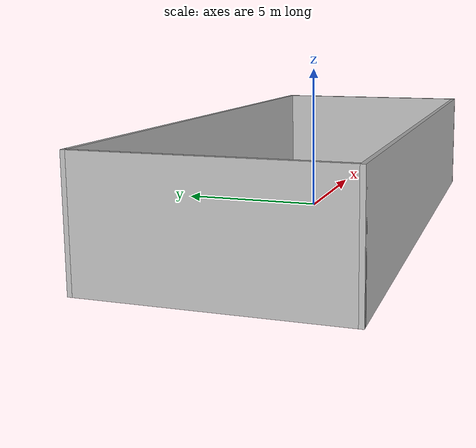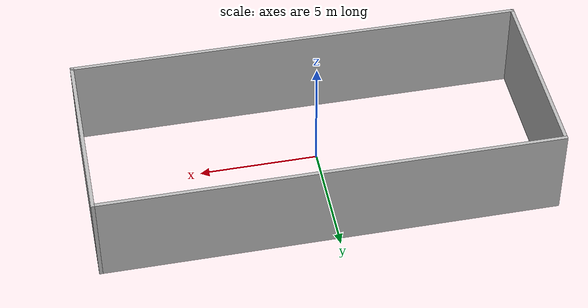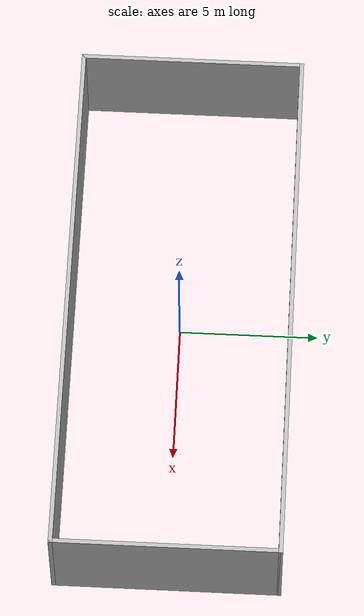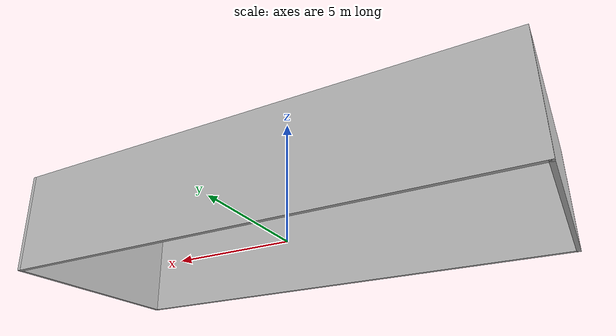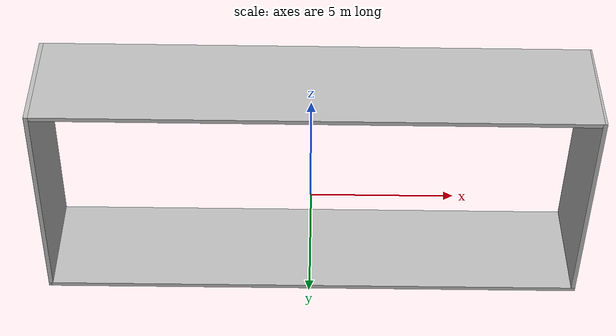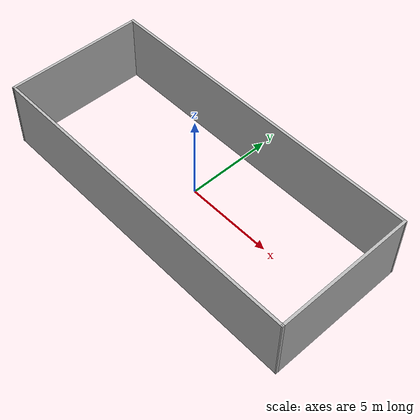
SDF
<?xml version='1.0'?>
<sdf version='1.7'>
  <model name='ucsd_tent_walls'>
    <pose>0.112948 0 0 0 -0 0</pose>
    <link name='Wall_10'>
      <collision name='Wall_10_Collision'>
        <geometry>
          <box>
            <size>8.15 0.15 4</size>
          </box>
        </geometry>
        <pose>0 0 1.25 0 -0 0</pose>
      </collision>
      <visual name='Wall_10_Visual'>
        <pose>0 0 1.25 0 -0 0</pose>
        <geometry>
          <box>
            <size>8.15 0.15 4</size>
          </box>
        </geometry>
          <material>
            <script>
              <uri>model://ucsd_tent_walls/materials/scripts</uri>
              <uri>model://ucsd_tent_walls/materials/textures</uri>
              <name>Floor/ShortWall</name>
            </script>
          </material>
        <meta>
          <layer>0</layer>
        </meta>
      </visual>
      <pose>9.61255 0 0 0 -0 1.57067</pose>
    </link>
    <link name='Wall_11'>
      <collision name='Wall_11_Collision'>
        <geometry>
          <box>
            <size>19.376 0.15 4</size>
          </box>
        </geometry>
        <pose>0 0 1.25 0 -0 0</pose>
      </collision>
      <visual name='Wall_11_Visual'>
        <pose>0 0 1.25 0 -0 0</pose>
        <geometry>
          <box>
            <size>19.376 0.15 4</size>
          </box>
        </geometry>
          <material>
            <script>
              <uri>model://ucsd_tent_walls/materials/scripts</uri>
              <uri>model://ucsd_tent_walls/materials/textures</uri>
              <name>Floor/LongWall</name>
            </script>
          </material>
        <meta>
          <layer>0</layer>
        </meta>
      </visual>
      <pose>5.2e-05 4 0 0 -0 3.14159</pose>
    </link>
    <link name='Wall_12'>
      <collision name='Wall_12_Collision'>
        <geometry>
          <box>
            <size>8.15 0.15 4</size>
          </box>
        </geometry>
        <pose>0 0 1.25 0 -0 0</pose>
      </collision>
      <visual name='Wall_12_Visual'>
        <pose>0 0 1.25 0 -0 0</pose>
        <geometry>
          <box>
            <size>8.15 0.15 4</size>
          </box>
        </geometry>
          <material>
            <script>
              <uri>model://ucsd_tent_walls/materials/scripts</uri>
              <uri>model://ucsd_tent_walls/materials/textures</uri>
              <name>Floor/ShortWall</name>
            </script>
          </material>
        <meta>
          <layer>0</layer>
        </meta>
      </visual>
      <pose>-9.61295 0 0 0 -0 -1.5708</pose>
    </link>
    <link name='Wall_9'>
      <collision name='Wall_9_Collision'>
        <geometry>
          <box>
            <size>19.3752 0.15 4</size>
          </box>
        </geometry>
        <pose>0 0 1.25 0 -0 0</pose>
      </collision>
      <visual name='Wall_9_Visual'>
        <pose>0 0 1.25 0 -0 0</pose>
        <geometry>
          <box>
            <size>19.3752 0.15 4</size>
          </box>
        </geometry>
          <material>
            <script>
              <uri>model://ucsd_tent_walls/materials/scripts</uri>
              <uri>model://ucsd_tent_walls/materials/textures</uri>
              <name>Floor/LongWall</name>
            </script>
          </material>
        <meta>
          <layer>0</layer>
        </meta>
      </visual>
      <pose>-0.000448 -4 0 0 -0 0</pose>
    </link>
    <static>1</static>
  </model>
</sdf>
